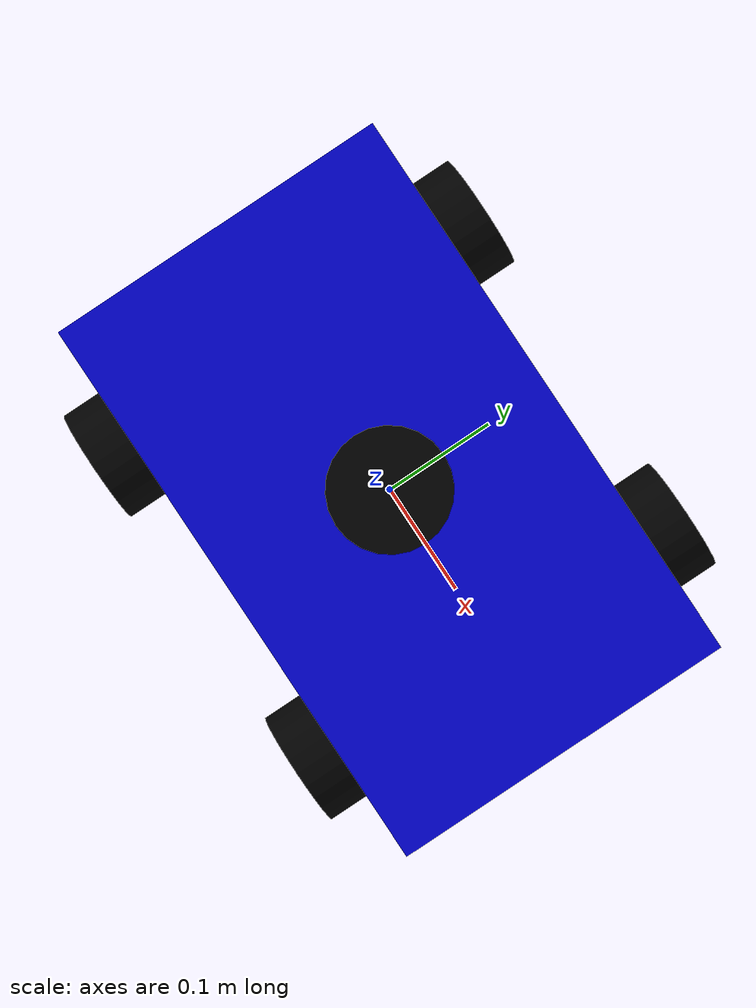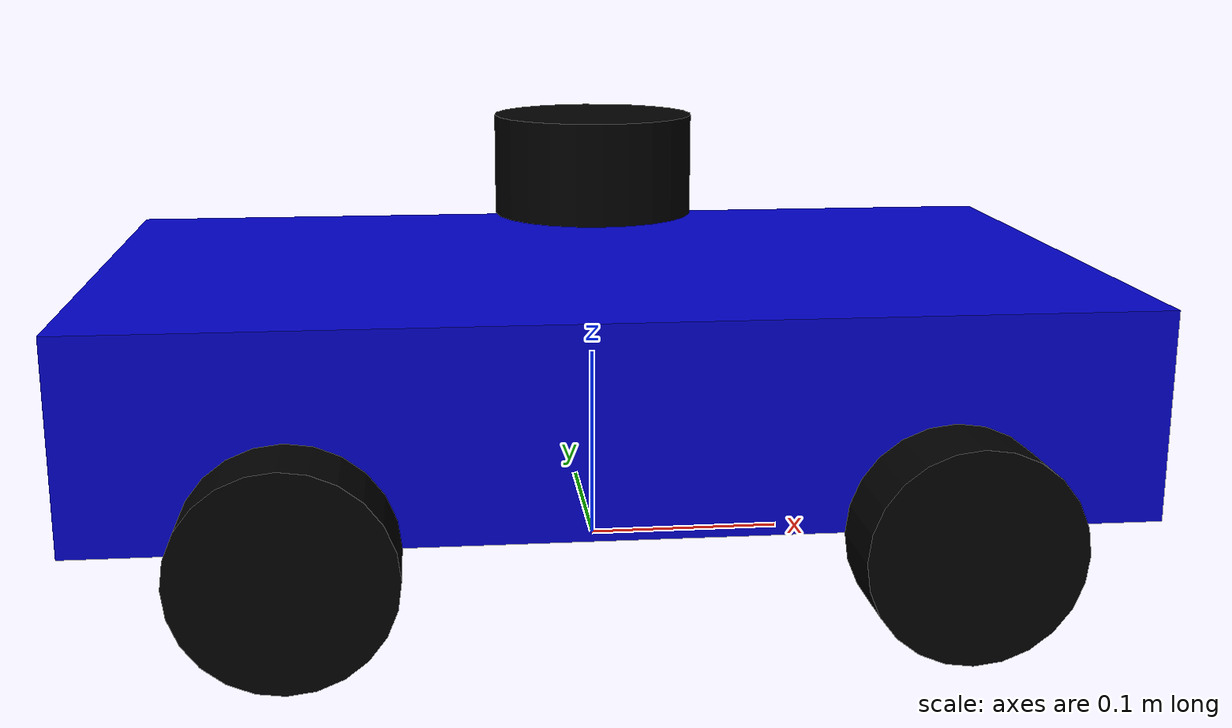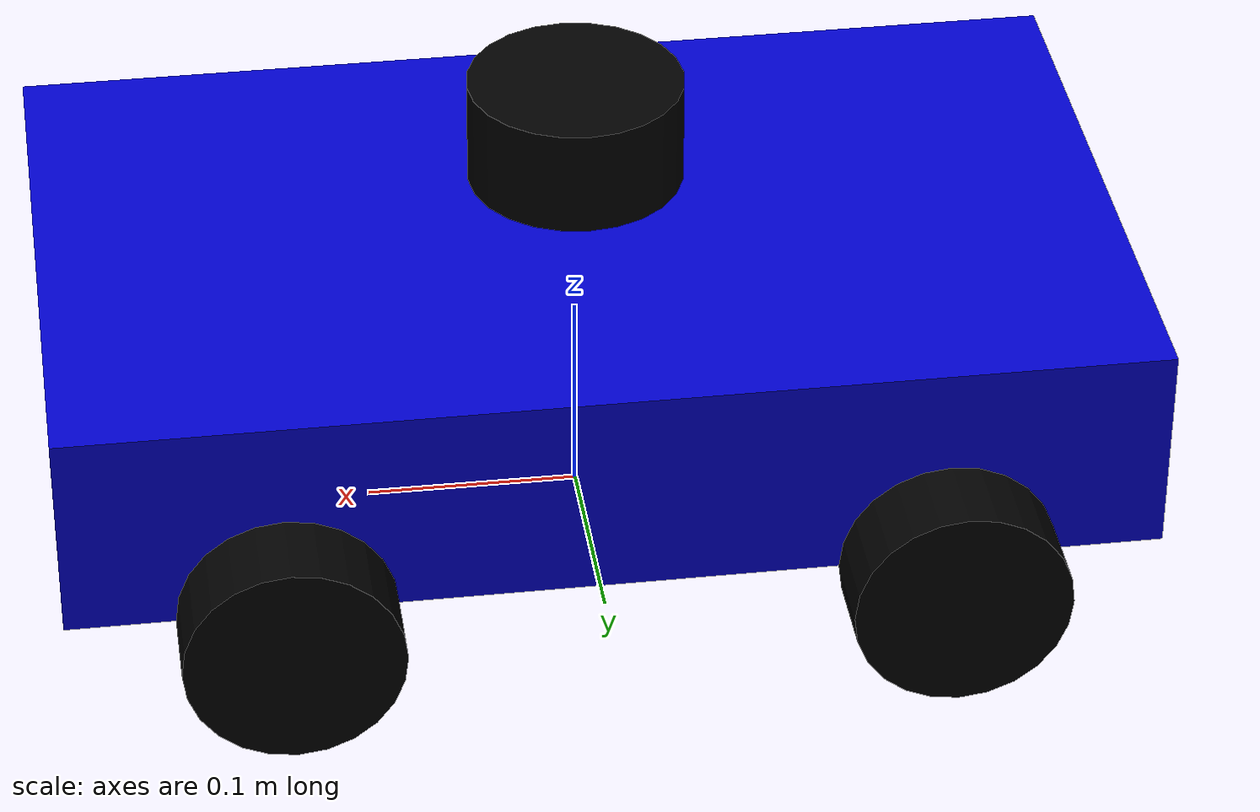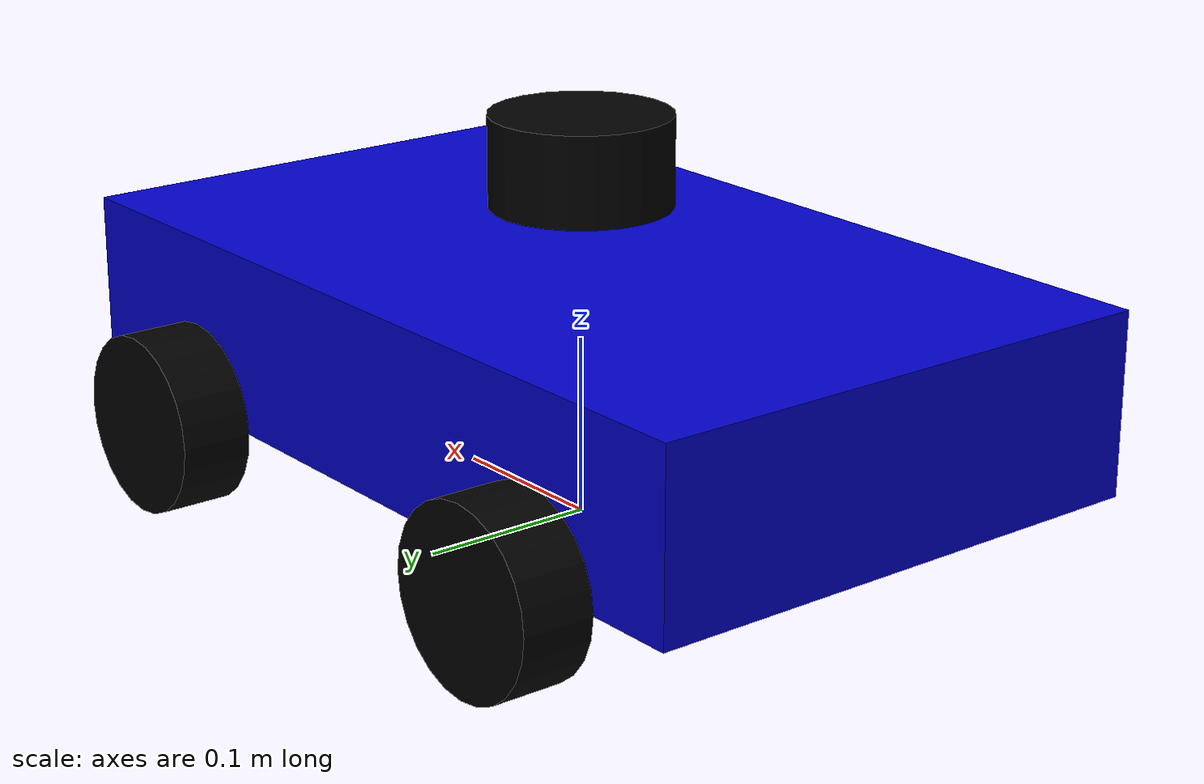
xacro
<?xml version="1.0"?>
<robot name="my_slam_pkg" xmlns:xacro="http://www.ros.org/wiki/xacro">

  <!-- Arguments -->
  <xacro:arg name="use_fake_hardware" default="false"/>

  <!-- Robot Configuration -->
  <link name="base_footprint"/>

  <joint name="base_joint" type="fixed">
    <parent link="base_footprint"/>
    <child link="base_link"/>
    <origin xyz="0 0 0.1" rpy="0 0 0"/>
  </joint>

  <!-- Colors -->
  <material name="black">
    <color rgba="0.0 0.0 0.0 1.0"/>
  </material>
  <material name="blue">
    <color rgba="0.0 0.0 0.8 1.0"/>
  </material>

  <!-- Base Link -->
  <link name="base_link">
    <visual>
      <geometry>
        <box size="0.5 0.3 0.1"/>
      </geometry>
      <material name="blue"/>
    </visual>
    <collision>
      <geometry>
        <box size="0.5 0.3 0.1"/>
      </geometry>
    </collision>
    <inertial>
      <mass value="5.0"/>
      <origin xyz="0 0 0" rpy="0 0 0"/>
      <inertia ixx="0.1" ixy="0" ixz="0" iyy="0.1" iyz="0" izz="0.1"/>
    </inertial>
  </link>

  <!-- Front Left Wheel -->
  <link name="front_left_wheel">
    <visual>
      <geometry>
        <cylinder radius="0.05" length="0.04"/>
      </geometry>
      <material name="black"/>
    </visual>
    <collision>
      <geometry>
        <cylinder radius="0.05" length="0.04"/>
      </geometry>
    </collision>
    <inertial>
      <mass value="0.5"/>
      <origin xyz="0 0 0" rpy="0 0 0"/>
      <inertia ixx="0.001" ixy="0" ixz="0" iyy="0.001" iyz="0" izz="0.001"/>
    </inertial>
  </link>

  <joint name="front_left_wheel_joint" type="continuous">
    <parent link="base_link"/>
    <child link="front_left_wheel"/>
    <origin xyz="0.15 0.17 -0.05" rpy="-1.5708 0 0"/>
    <axis xyz="0 0 1"/>
    <dynamics damping="0.05" friction="0.05"/>
  </joint>

  <!-- Front Right Wheel -->
  <link name="front_right_wheel">
    <visual>
      <geometry>
        <cylinder radius="0.05" length="0.04"/>
      </geometry>
      <material name="black"/>
    </visual>
    <collision>
      <geometry>
        <cylinder radius="0.05" length="0.04"/>
      </geometry>
    </collision>
    <inertial>
      <mass value="0.5"/>
      <origin xyz="0 0 0" rpy="0 0 0"/>
      <inertia ixx="0.001" ixy="0" ixz="0" iyy="0.001" iyz="0" izz="0.001"/>
    </inertial>
  </link>

  <joint name="front_right_wheel_joint" type="continuous">
    <parent link="base_link"/>
    <child link="front_right_wheel"/>
    <origin xyz="0.15 -0.17 -0.05" rpy="-1.5708 0 0"/>
    <axis xyz="0 0 1"/>
    <dynamics damping="0.05" friction="0.05"/>
  </joint>

  <!-- Rear Left Wheel -->
  <link name="rear_left_wheel">
    <visual>
      <geometry>
        <cylinder radius="0.05" length="0.04"/>
      </geometry>
      <material name="black"/>
    </visual>
    <collision>
      <geometry>
        <cylinder radius="0.05" length="0.04"/>
      </geometry>
    </collision>
    <inertial>
      <mass value="0.5"/>
      <origin xyz="0 0 0" rpy="0 0 0"/>
      <inertia ixx="0.001" ixy="0" ixz="0" iyy="0.001" iyz="0" izz="0.001"/>
    </inertial>
  </link>

  <joint name="rear_left_wheel_joint" type="continuous">
    <parent link="base_link"/>
    <child link="rear_left_wheel"/>
    <origin xyz="-0.15 0.17 -0.05" rpy="-1.5708 0 0"/>
    <axis xyz="0 0 1"/>
    <dynamics damping="0.05" friction="0.05"/>
  </joint>

  <!-- Rear Right Wheel -->
  <link name="rear_right_wheel">
    <visual>
      <geometry>
        <cylinder radius="0.05" length="0.04"/>
      </geometry>
      <material name="black"/>
    </visual>
    <collision>
      <geometry>
        <cylinder radius="0.05" length="0.04"/>
      </geometry>
    </collision>
    <inertial>
      <mass value="0.5"/>
      <origin xyz="0 0 0" rpy="0 0 0"/>
      <inertia ixx="0.001" ixy="0" ixz="0" iyy="0.001" iyz="0" izz="0.001"/>
    </inertial>
  </link>

  <joint name="rear_right_wheel_joint" type="continuous">
    <parent link="base_link"/>
    <child link="rear_right_wheel"/>
    <origin xyz="-0.15 -0.17 -0.05" rpy="-1.5708 0 0"/>
    <axis xyz="0 0 1"/>
    <dynamics damping="0.05" friction="0.05"/>
  </joint>

  <!-- LiDAR Link -->
  <link name="lidar_link">
    <visual>
      <geometry>
        <cylinder radius="0.05" length="0.05"/>
      </geometry>
      <material name="black"/>
    </visual>
    <collision>
      <geometry>
        <cylinder radius="0.05" length="0.05"/>
      </geometry>
    </collision>
    <inertial>
      <mass value="0.1"/>
      <origin xyz="0 0 0" rpy="0 0 0"/>
      <inertia ixx="0.001" ixy="0" ixz="0" iyy="0.001" iyz="0" izz="0.001"/>
    </inertial>
  </link>

  <joint name="lidar_joint" type="fixed">
    <parent link="base_link"/>
    <child link="lidar_link"/>
    <origin xyz="0 0 0.1" rpy="0 0 0"/>
  </joint>

 <!-- ROS2 Control Configuration -->
<xacro:if value="$(arg use_fake_hardware)">
  <!-- ESP32 simulated control -->
  <ros2_control name="car_control" type="system">
    <hardware>
      <plugin>my_slam_pkg/ESP32HardwareInterface</plugin>
      <param name="use_sim_hardware">true</param>
      <param name="wheel_radius">0.05</param>
      <param name="wheel_separation">0.34</param>
      <param name="cmd_vel_topic">/cmd_vel</param>
      <param name="joint_states_topic">/joint_states</param>
    </hardware>

    <!-- Front Left Wheel -->
    <joint name="front_left_wheel_joint">
      <command_interface name="velocity">
        <param name="min">-10</param>
        <param name="max">10</param>
      </command_interface>
      <state_interface name="position"/>
      <state_interface name="velocity"/>
    </joint>

    <!-- Front Right Wheel -->
    <joint name="front_right_wheel_joint">
      <command_interface name="velocity">
        <param name="min">-10</param>
        <param name="max">10</param>
      </command_interface>
      <state_interface name="position"/>
      <state_interface name="velocity"/>
    </joint>

    <!-- Rear Left Wheel -->
    <joint name="rear_left_wheel_joint">
      <command_interface name="velocity">
        <param name="min">-10</param>
        <param name="max">10</param>
      </command_interface>
      <state_interface name="position"/>
      <state_interface name="velocity"/>
    </joint>

    <!-- Rear Right Wheel -->
    <joint name="rear_right_wheel_joint">
      <command_interface name="velocity">
        <param name="min">-10</param>
        <param name="max">10</param>
      </command_interface>
      <state_interface name="position"/>
      <state_interface name="velocity"/>
    </joint>
  </ros2_control>
</xacro:if>

<xacro:unless value="$(arg use_fake_hardware)">
  <!-- ESP32 hardware control -->
  <ros2_control name="car_control" type="system">
    <hardware>
      <plugin>my_slam_pkg/ESP32HardwareInterface</plugin>
      <param name="use_sim_hardware">false</param>
      <param name="wheel_radius">0.05</param>
      <param name="wheel_separation">0.34</param>
      <param name="cmd_vel_topic">/cmd_vel</param>
      <param name="joint_states_topic">/joint_states</param>
    </hardware>

    <!-- Front Left Wheel -->
    <joint name="front_left_wheel_joint">
      <command_interface name="velocity">
        <param name="min">-10</param>
        <param name="max">10</param>
      </command_interface>
      <state_interface name="position"/>
      <state_interface name="velocity"/>
    </joint>

    <!-- Front Right Wheel -->
    <joint name="front_right_wheel_joint">
      <command_interface name="velocity">
        <param name="min">-10</param>
        <param name="max">10</param>
      </command_interface>
      <state_interface name="position"/>
      <state_interface name="velocity"/>
    </joint>

    <!-- Rear Left Wheel -->
    <joint name="rear_left_wheel_joint">
      <command_interface name="velocity">
        <param name="min">-10</param>
        <param name="max">10</param>
      </command_interface>
      <state_interface name="position"/>
      <state_interface name="velocity"/>
    </joint>

    <!-- Rear Right Wheel -->
    <joint name="rear_right_wheel_joint">
      <command_interface name="velocity">
        <param name="min">-10</param>
        <param name="max">10</param>
      </command_interface>
      <state_interface name="position"/>
      <state_interface name="velocity"/>
    </joint>
  </ros2_control>
</xacro:unless>

  <!-- Gazebo ROS2 Control Plugin -->
  <gazebo>
  <xacro:if value="$(arg use_fake_hardware)">
    <plugin name="gazebo_ros2_control" filename="libgazebo_ros2_control.so">
      <parameters>$(find my_slam_pkg)/config/controllers.yaml</parameters>
      <robot_sim_type>gazebo_ros2_control/GazeboSystem</robot_sim_type>
    </plugin>
  </xacro:if>
  <xacro:unless value="$(arg use_fake_hardware)">
    <plugin name="gazebo_ros2_control" filename="libgazebo_ros2_control.so">
      <parameters>$(find my_slam_pkg)/config/hardware_controllers.yaml</parameters>
      <robot_sim_type>my_slam_pkg/ESP32HardwareInterface</robot_sim_type>
    </plugin>
  </xacro:unless>
</gazebo>

  <!-- LiDAR Sensor Configuration - Improved configuration -->
  <gazebo reference="lidar_link">
    <sensor type="ray" name="lidar">
      <pose>0 0 0 0 0 0</pose>
      <visualize>true</visualize>
      <update_rate>20</update_rate>
      <ray>
        <scan>
          <horizontal>
            <samples>720</samples>
            <resolution>0.5</resolution>
            <min_angle>-3.14159</min_angle>
            <max_angle>3.14159</max_angle>
          </horizontal>
        </scan>
        <range>
          <min>0.15</min>
          <max>12.0</max>
          <resolution>0.01</resolution>
        </range>
        <noise>
          <type>gaussian</type>
          <mean>0.0</mean>
          <stddev>0.01</stddev>
        </noise>
      </ray>
      <plugin name="laser_controller" filename="libgazebo_ros_ray_sensor.so">
        <ros>
          <namespace>/</namespace>
          <remapping>~/out:=scan</remapping>
        </ros>
        <output_type>sensor_msgs/LaserScan</output_type>
        <frame_name>lidar_link</frame_name>
      </plugin>
    </sensor>
  </gazebo>

  <!-- Material Properties -->
  <gazebo reference="base_link">
    <material>Gazebo/Blue</material>
  </gazebo>

  <gazebo reference="front_left_wheel">
    <material>Gazebo/Black</material>
    <mu1>0.8</mu1>
    <mu2>0.8</mu2>
    <kp>500000.0</kp>
    <kd>10.0</kd>
    <fdir1>1 0 0</fdir1>
  </gazebo>

  <gazebo reference="front_right_wheel">
    <material>Gazebo/Black</material>
    <mu1>0.8</mu1>
    <mu2>0.8</mu2>
    <kp>500000.0</kp>
    <kd>10.0</kd>
    <fdir1>1 0 0</fdir1>
  </gazebo>

  <gazebo reference="rear_left_wheel">
    <material>Gazebo/Black</material>
    <mu1>0.8</mu1>
    <mu2>0.8</mu2>
    <kp>500000.0</kp>
    <kd>10.0</kd>
    <fdir1>1 0 0</fdir1>
  </gazebo>

  <gazebo reference="rear_right_wheel">
    <material>Gazebo/Black</material>
    <mu1>0.8</mu1>
    <mu2>0.8</mu2>
    <kp>500000.0</kp>
    <kd>10.0</kd>
    <fdir1>1 0 0</fdir1>
  </gazebo>

  <gazebo reference="lidar_link">
    <material>Gazebo/Black</material>
  </gazebo>

</robot>
